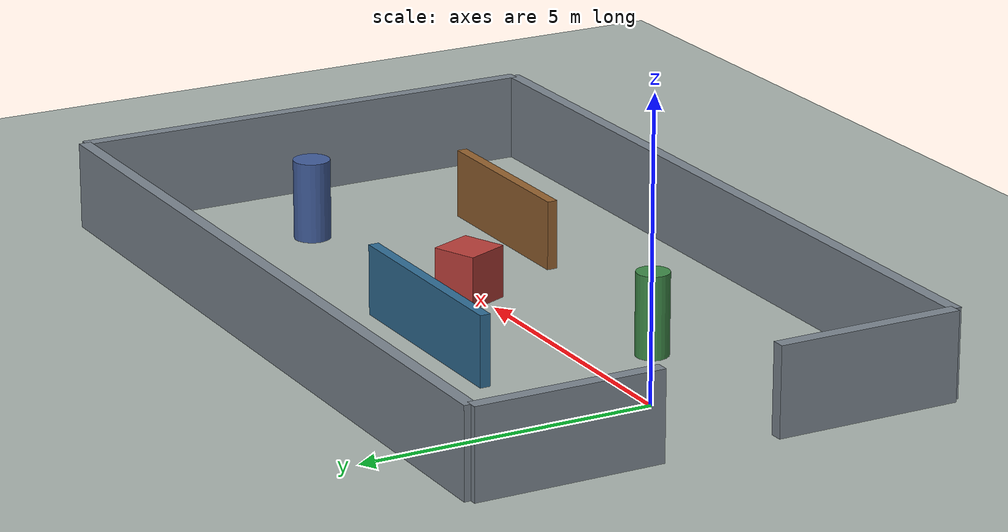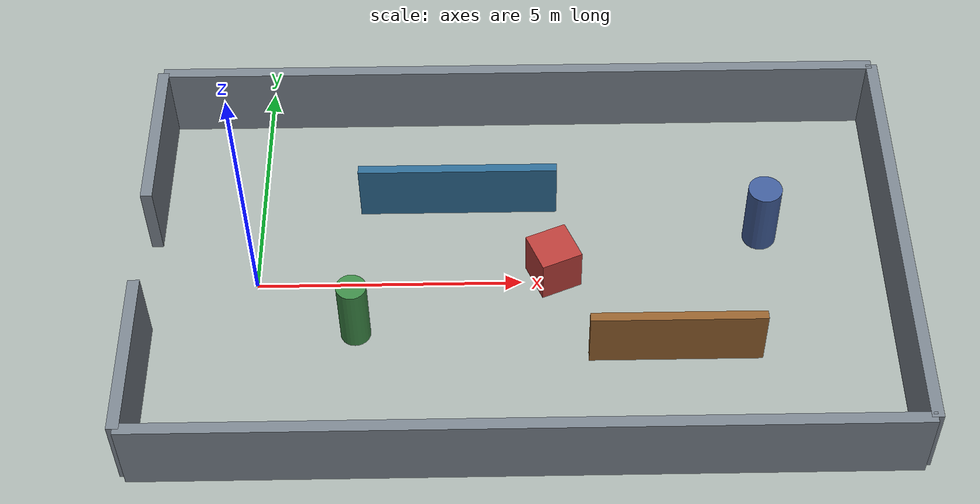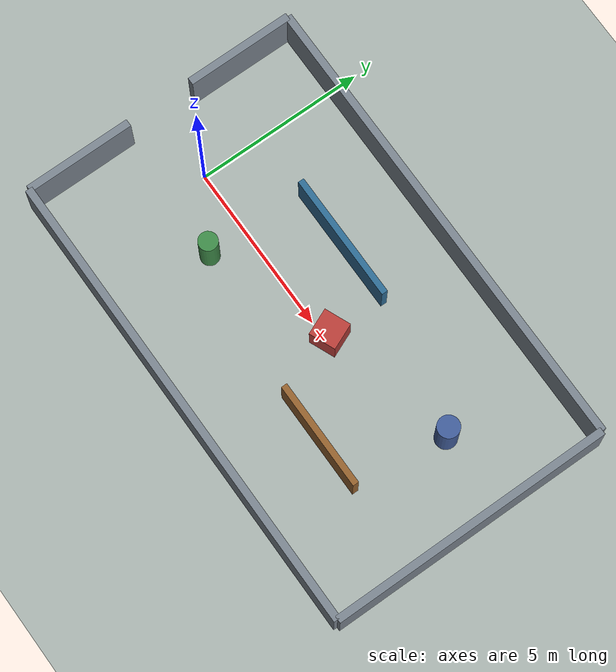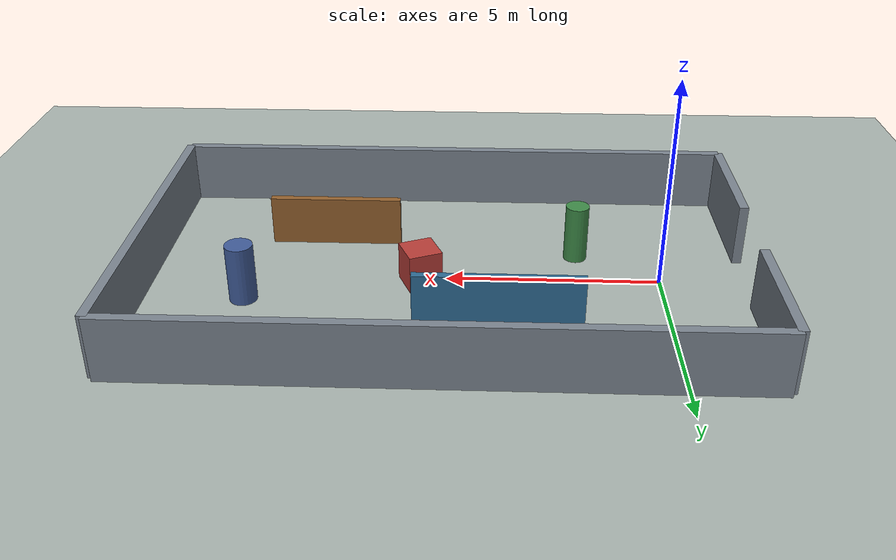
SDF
<?xml version="1.0"?>
<sdf version="1.9">
  <world name="lingtu_gazebo_demo_room">
    <plugin filename="gz-sim-physics-system" name="gz::sim::systems::Physics"/>
    <plugin filename="gz-sim-user-commands-system" name="gz::sim::systems::UserCommands"/>
    <plugin filename="gz-sim-scene-broadcaster-system" name="gz::sim::systems::SceneBroadcaster"/>
    <plugin filename="gz-sim-sensors-system" name="gz::sim::systems::Sensors">
      <render_engine>ogre2</render_engine>
    </plugin>

    <gravity>0 0 -9.81</gravity>
    <magnetic_field>6e-06 2.3e-05 -4.2e-05</magnetic_field>
    <atmosphere type="adiabatic"/>

    <light name="sun" type="directional">
      <cast_shadows>true</cast_shadows>
      <pose>2 0 12 0 0 0</pose>
      <diffuse>0.85 0.85 0.82 1</diffuse>
      <specular>0.25 0.25 0.25 1</specular>
      <direction>-0.45 0.15 -0.88</direction>
    </light>

    <model name="ground_plane">
      <static>true</static>
      <pose>5 0 0 0 0 0</pose>
      <link name="link">
        <collision name="collision">
          <geometry>
            <plane>
              <normal>0 0 1</normal>
              <size>18 12</size>
            </plane>
          </geometry>
          <surface>
            <friction>
              <ode>
                <mu>1.2</mu>
                <mu2>1.2</mu2>
              </ode>
            </friction>
          </surface>
        </collision>
        <visual name="visual">
          <geometry>
            <plane>
              <normal>0 0 1</normal>
              <size>18 12</size>
            </plane>
          </geometry>
          <material>
            <ambient>0.50 0.53 0.52 1</ambient>
            <diffuse>0.66 0.70 0.68 1</diffuse>
          </material>
        </visual>
      </link>
    </model>

    <model name="demo_left_wall">
      <static>true</static>
      <pose>5 4.2 0.75 0 0 0</pose>
      <link name="link">
        <collision name="collision"><geometry><box><size>14 0.22 1.5</size></box></geometry></collision>
        <visual name="visual">
          <geometry><box><size>14 0.22 1.5</size></box></geometry>
          <material><ambient>0.26 0.28 0.30 1</ambient><diffuse>0.48 0.52 0.56 1</diffuse></material>
        </visual>
      </link>
    </model>

    <model name="demo_right_wall">
      <static>true</static>
      <pose>5 -4.2 0.75 0 0 0</pose>
      <link name="link">
        <collision name="collision"><geometry><box><size>14 0.22 1.5</size></box></geometry></collision>
        <visual name="visual">
          <geometry><box><size>14 0.22 1.5</size></box></geometry>
          <material><ambient>0.26 0.28 0.30 1</ambient><diffuse>0.48 0.52 0.56 1</diffuse></material>
        </visual>
      </link>
    </model>

    <model name="demo_back_wall">
      <static>true</static>
      <pose>12 0 0.75 0 0 0</pose>
      <link name="link">
        <collision name="collision"><geometry><box><size>0.22 8.4 1.5</size></box></geometry></collision>
        <visual name="visual">
          <geometry><box><size>0.22 8.4 1.5</size></box></geometry>
          <material><ambient>0.26 0.28 0.30 1</ambient><diffuse>0.48 0.52 0.56 1</diffuse></material>
        </visual>
      </link>
    </model>

    <model name="demo_front_left_wall">
      <static>true</static>
      <pose>-2 2.6 0.75 0 0 0</pose>
      <link name="link">
        <collision name="collision"><geometry><box><size>0.22 3.2 1.5</size></box></geometry></collision>
        <visual name="visual">
          <geometry><box><size>0.22 3.2 1.5</size></box></geometry>
          <material><ambient>0.26 0.28 0.30 1</ambient><diffuse>0.48 0.52 0.56 1</diffuse></material>
        </visual>
      </link>
    </model>

    <model name="demo_front_right_wall">
      <static>true</static>
      <pose>-2 -2.6 0.75 0 0 0</pose>
      <link name="link">
        <collision name="collision"><geometry><box><size>0.22 3.2 1.5</size></box></geometry></collision>
        <visual name="visual">
          <geometry><box><size>0.22 3.2 1.5</size></box></geometry>
          <material><ambient>0.26 0.28 0.30 1</ambient><diffuse>0.48 0.52 0.56 1</diffuse></material>
        </visual>
      </link>
    </model>

    <model name="demo_mid_wall_left">
      <static>true</static>
      <pose>3.8 1.85 0.6 0 0 0</pose>
      <link name="link">
        <collision name="collision"><geometry><box><size>3.8 0.18 1.2</size></box></geometry></collision>
        <visual name="visual">
          <geometry><box><size>3.8 0.18 1.2</size></box></geometry>
          <material><ambient>0.12 0.25 0.35 1</ambient><diffuse>0.18 0.42 0.58 1</diffuse></material>
        </visual>
      </link>
    </model>

    <model name="demo_mid_wall_right">
      <static>true</static>
      <pose>7.8 -1.75 0.6 0 0 0</pose>
      <link name="link">
        <collision name="collision"><geometry><box><size>3.2 0.18 1.2</size></box></geometry></collision>
        <visual name="visual">
          <geometry><box><size>3.2 0.18 1.2</size></box></geometry>
          <material><ambient>0.34 0.22 0.12 1</ambient><diffuse>0.58 0.38 0.18 1</diffuse></material>
        </visual>
      </link>
    </model>

    <model name="demo_block_a">
      <static>true</static>
      <pose>5.6 0.15 0.45 0 0 0.4</pose>
      <link name="link">
        <collision name="collision"><geometry><box><size>0.8 0.8 0.9</size></box></geometry></collision>
        <visual name="visual">
          <geometry><box><size>0.8 0.8 0.9</size></box></geometry>
          <material><ambient>0.42 0.16 0.16 1</ambient><diffuse>0.72 0.24 0.22 1</diffuse></material>
        </visual>
      </link>
    </model>

    <model name="demo_column_a">
      <static>true</static>
      <pose>1.9 -1.15 0.7 0 0 0</pose>
      <link name="link">
        <collision name="collision"><geometry><cylinder><radius>0.28</radius><length>1.4</length></cylinder></geometry></collision>
        <visual name="visual">
          <geometry><cylinder><radius>0.28</radius><length>1.4</length></cylinder></geometry>
          <material><ambient>0.16 0.32 0.18 1</ambient><diffuse>0.24 0.54 0.28 1</diffuse></material>
        </visual>
      </link>
    </model>

    <model name="demo_column_b">
      <static>true</static>
      <pose>9.6 1.05 0.7 0 0 0</pose>
      <link name="link">
        <collision name="collision"><geometry><cylinder><radius>0.32</radius><length>1.4</length></cylinder></geometry></collision>
        <visual name="visual">
          <geometry><cylinder><radius>0.32</radius><length>1.4</length></cylinder></geometry>
          <material><ambient>0.18 0.25 0.36 1</ambient><diffuse>0.25 0.36 0.60 1</diffuse></material>
        </visual>
      </link>
    </model>

    <physics name="lingtu_physics" type="ode">
      <max_step_size>0.005</max_step_size>
      <real_time_factor>1.0</real_time_factor>
      <real_time_update_rate>200</real_time_update_rate>
    </physics>
  </world>
</sdf>
